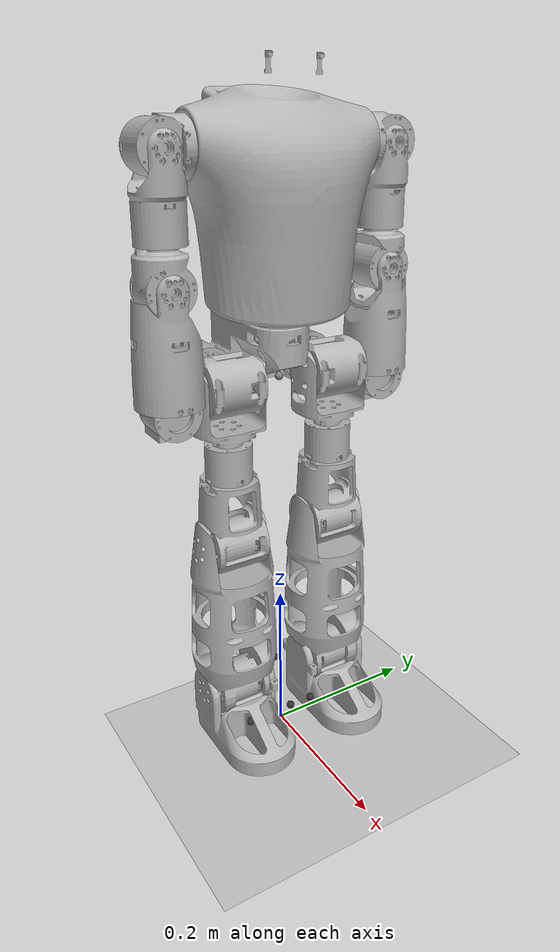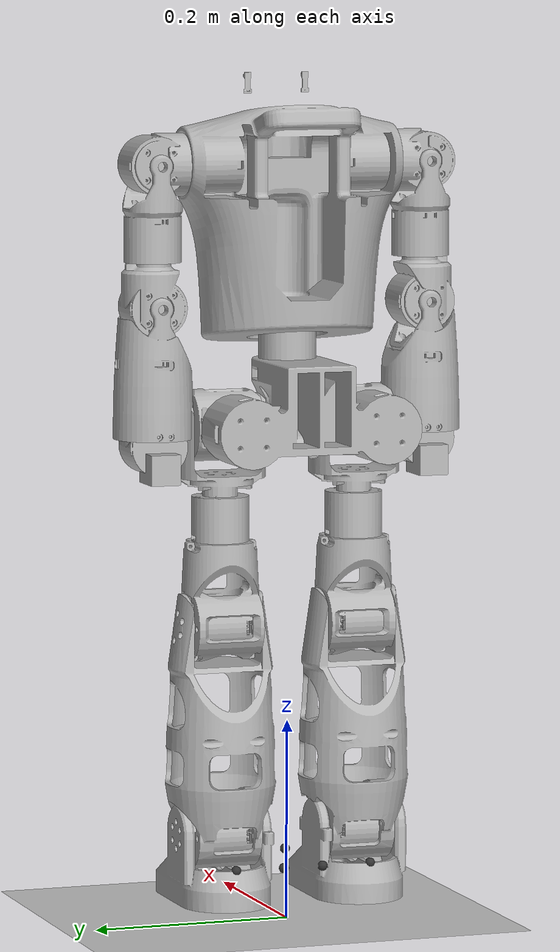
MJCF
<?xml version="1.0" ?>
<mujoco model="dm_prototype_v02_mocap">
  <compiler angle="radian" meshdir="../urdf/meshes"/>

  <default>
    <motor ctrlrange="-1 1" ctrllimited="true"/>
    <joint actuatorfrclimited="true" type="hinge"/>
  </default>

  <asset>
    <mesh name="base_link" file="base_link.STL"/>
    <mesh name="l_ankle_pitch_link" file="l_ankle_pitch_link.STL"/>
    <mesh name="l_camera_link" file="l_camera_link.STL"/>
    <mesh name="l_elbow_roll_link" file="l_elbow_roll_link.STL"/>
    <mesh name="l_hip_pitch_link" file="l_hip_pitch_link.STL"/>
    <mesh name="l_hip_roll_link" file="l_hip_roll_link.STL"/>
    <mesh name="l_hip_yaw_link" file="l_hip_yaw_link.STL"/>
    <mesh name="l_knee_pitch_link" file="l_knee_pitch_link.STL"/>
    <mesh name="l_shoulder_pitch_link" file="l_shoulder_pitch_link.STL"/>
    <mesh name="l_shoulder_roll_link" file="l_shoulder_roll_link.STL"/>
    <mesh name="l_shoulder_yaw_link" file="l_shoulder_yaw_link.STL"/>
    <mesh name="l_wrist_yaw_link" file="l_wrist_yaw_link.STL"/>
    <mesh name="r_ankle_pitch_link" file="r_ankle_pitch_link.STL"/>
    <mesh name="r_camera_link" file="r_camera_link.STL"/>
    <mesh name="r_elbow_roll_link" file="r_elbow_roll_link.STL"/>
    <mesh name="r_hip_pitch_link" file="r_hip_pitch_link.STL"/>
    <mesh name="r_hip_roll_link" file="r_hip_roll_link.STL"/>
    <mesh name="r_hip_yaw_link" file="r_hip_yaw_link.STL"/>
    <mesh name="r_knee_pitch_link" file="r_knee_pitch_link.STL"/>
    <mesh name="r_shoulder_pitch_link" file="r_shoulder_pitch_link.STL"/>
    <mesh name="r_shoulder_roll_link" file="r_shoulder_roll_link.STL"/>
    <mesh name="r_shoulder_yaw_link" file="r_shoulder_yaw_link.STL"/>
    <mesh name="r_wrist_yaw_link" file="r_wrist_yaw_link.STL"/>
    <mesh name="waist_yaw_link" file="waist_yaw_link.STL"/>
  </asset>

  <worldbody>
    <geom name="floor" size="0 0 0.01" type="plane" contype="1" conaffinity="0" priority="1" friction="0.6" condim="3" rgba="0.8 0.8 0.8 1"/>
    <light diffuse=".5 .5 .5" pos="-3 -3 5" dir="3 3 -5" castshadow="true"/>

    <body name="base_link" pos="0 0 0.5">
      <inertial pos="-0.051472 -1.1552e-05 0.020319" mass="1.4163" diaginertia="0.0021671 0.0015112 0.0025051"/>
      <freejoint name="base_link"/>
      <site name="imu" pos="0 0 0"/>
      <geom type="mesh" mesh="base_link" name="base_link_visual" pos="0.0 0.0 0.0" contype="0" conaffinity="0" group="1" density="0" rgba="0.7 0.7 0.7 1"/>
      <geom type="mesh" mesh="base_link" name="base_link_collision" pos="0.0 0.0 0.0" rgba="0.7 0.7 0.7 1"/>

      <body name="waist_yaw_link" pos="0.0 0.0 0.0437499999999999">
        <joint name="waist_yaw_joint" type="hinge" axis="0.0 0.0 -1.0" range="-3.1415 3.1415" actuatorfrcrange="-50 50"/>
        <inertial pos="0.01003 2.647e-07 0.15087" mass="4.1981" diaginertia="0.022522 0.017977 0.014275"/>
        <geom type="mesh" mesh="waist_yaw_link" name="waist_yaw_link_visual" pos="0.0 0.0 0.0" contype="0" conaffinity="0" group="1" density="0" rgba="0.7 0.7 0.7 1"/>
        <geom type="mesh" mesh="waist_yaw_link" name="waist_yaw_link_collision" pos="0.0 0.0 0.0" rgba="0.7 0.7 0.7 1"/>

        <body name="r_shoulder_pitch_link" pos="0.0 -0.0530000000000001 0.21325">
          <joint name="r_shoulder_pitch_joint" type="hinge" axis="0.0 -1.0 0.0" range="-3.4557 2.4088" actuatorfrcrange="-25 25"/>
          <inertial pos="-0.001297 -0.076747 1.2055e-06" mass="0.40323" diaginertia="0.00014803 0.00014627 0.00012736"/>
          <geom type="mesh" mesh="r_shoulder_pitch_link" name="r_shoulder_pitch_link_visual" pos="0.0 0.0 0.0" contype="0" conaffinity="0" group="1" density="0" rgba="0.7 0.7 0.7 1"/>
          <geom type="mesh" mesh="r_shoulder_pitch_link" name="r_shoulder_pitch_link_collision" pos="0.0 0.0 0.0" rgba="0.7 0.7 0.7 1"/>

          <body name="r_shoulder_roll_link" pos="-0.0227000000000002 -0.0865 0.0">
            <joint name="r_shoulder_roll_joint" type="hinge" axis="1.0 0.0 0.0" range="-2.5306 0.0" actuatorfrcrange="-25 25"/>
            <inertial pos="0.024716 -5.0805e-05 -0.05577" mass="0.41152" diaginertia="0.0001432 0.00016225 0.00016985"/>
            <geom type="mesh" mesh="r_shoulder_roll_link" name="r_shoulder_roll_link_visual" pos="0.0 0.0 0.0" contype="0" conaffinity="0" group="1" density="0" rgba="0.7 0.7 0.7 1"/>
            <geom type="mesh" mesh="r_shoulder_roll_link" name="r_shoulder_roll_link_collision" pos="0.0 0.0 0.0" rgba="0.7 0.7 0.7 1"/>

            <body name="r_shoulder_yaw_link" pos="0.0220000000000001 0.0 -0.0499999999999993">
              <joint name="r_shoulder_yaw_joint" type="hinge" axis="0.0 0.0 -1.0" range="-3.1415 2.4088" actuatorfrcrange="-25 25"/>
              <inertial pos="-0.0010518 -0.00089443 -0.079087" mass="0.40075" diaginertia="0.00014176 0.00013078 0.00013929"/>
              <geom type="mesh" mesh="r_shoulder_yaw_link" name="r_shoulder_yaw_link_visual" pos="0.0 0.0 0.0" contype="0" conaffinity="0" group="1" density="0" rgba="0.7 0.7 0.7 1"/>
              <geom type="mesh" mesh="r_shoulder_yaw_link" name="r_shoulder_yaw_link_collision" pos="0.0 0.0 0.0" rgba="0.7 0.7 0.7 1"/>

              <body name="r_elbow_roll_link" pos="-0.0222999999999987 0.0 -0.0895">
                <joint name="r_elbow_roll_joint" type="hinge" axis="1.0 0.0 0.0" range="0.0 1.3613" actuatorfrcrange="-25 25"/>
                <inertial pos="0.024328 -9.7691e-05 -0.06013" mass="0.4941" diaginertia="0.00024294 0.00026056 0.00027054"/>
                <geom type="mesh" mesh="r_elbow_roll_link" name="r_elbow_roll_link_visual" pos="0.0 0.0 0.0" contype="0" conaffinity="0" group="1" density="0" rgba="0.7 0.7 0.7 1"/>
                <geom type="mesh" mesh="r_elbow_roll_link" name="r_elbow_roll_link_collision" pos="0.0 0.0 0.0" rgba="0.7 0.7 0.7 1"/>

                <body name="r_wrist_yaw_link" pos="0.0219999999999987 0.0 -0.0500000000000001">
                  <joint name="r_wrist_yaw_joint" type="hinge" axis="0.0 0.0 -1.0" range="-5.4977 0.2617" actuatorfrcrange="-5 5"/>
                  <inertial pos="-0.0007974 6.6694e-06 -0.076537" mass="0.39976" diaginertia="0.00014722 0.0001272 0.00014561"/>
                  <geom type="mesh" mesh="r_wrist_yaw_link" name="r_wrist_yaw_link_visual" pos="0.0 0.0 0.0" contype="0" conaffinity="0" group="1" density="0" rgba="0.7 0.7 0.7 1"/>
                  <geom type="mesh" mesh="r_wrist_yaw_link" name="r_wrist_yaw_link_collision" pos="0.0 0.0 0.0" rgba="0.7 0.7 0.7 1"/>

                  <body name="r_wrist_roll_link" pos="-0.0223 0.0 -0.0864999999999999">
                    <joint name="r_wrist_roll_joint" type="hinge" axis="1.0 0.0 0.0" range="-3.1415 3.1415" actuatorfrcrange="-5 5"/>
                    <inertial pos="0.022714 0.13132 0.019433" mass="0.001" diaginertia="2.7071 2.4689 0.31284"/>
                    <geom type="box" size="0.02 0.015 0.015" pos="0.0 0.0 -0.02" rgba="0.7 0.7 0.7 1"/>
                  </body>
                </body>
              </body>
            </body>
          </body>
        </body>

        <body name="l_shoulder_pitch_link" pos="0.0 0.053 0.21325">
          <joint name="l_shoulder_pitch_joint" type="hinge" axis="0.0 1.0 0.0" range="-3.4557 2.4088" actuatorfrcrange="-25 25"/>
          <inertial pos="-0.001297 0.076747 1.1885e-06" mass="0.40323" diaginertia="0.00014803 0.00014627 0.00012736"/>
          <geom type="mesh" mesh="l_shoulder_pitch_link" name="l_shoulder_pitch_link_visual" pos="0.0 0.0 0.0" contype="0" conaffinity="0" group="1" density="0" rgba="0.7 0.7 0.7 1"/>
          <geom type="mesh" mesh="l_shoulder_pitch_link" name="l_shoulder_pitch_link_collision" pos="0.0 0.0 0.0" rgba="0.7 0.7 0.7 1"/>

          <body name="l_shoulder_roll_link" pos="-0.0226999999999999 0.0865 0.0">
            <joint name="l_shoulder_roll_joint" type="hinge" axis="1.0 0.0 0.0" range="0.0 2.5306" actuatorfrcrange="-25 25"/>
            <inertial pos="0.024716 5.0877e-05 -0.05577" mass="0.41152" diaginertia="0.0001432 0.00016225 0.00016985"/>
            <geom type="mesh" mesh="l_shoulder_roll_link" name="l_shoulder_roll_link_visual" pos="0.0 0.0 0.0" contype="0" conaffinity="0" group="1" density="0" rgba="0.7 0.7 0.7 1"/>
            <geom type="mesh" mesh="l_shoulder_roll_link" name="l_shoulder_roll_link_collision" pos="0.0 0.0 0.0" rgba="0.7 0.7 0.7 1"/>

            <body name="l_shoulder_yaw_link" pos="0.0219999999999999 0.0 -0.0499999999999998">
              <joint name="l_shoulder_yaw_joint" type="hinge" axis="0.0 0.0 -1.0" range="-2.4088 3.4557" actuatorfrcrange="-25 25"/>
              <inertial pos="-0.0010518 0.00089444 -0.079087" mass="0.40075" diaginertia="0.00014176 0.00013078 0.00013929"/>
              <geom type="mesh" mesh="l_shoulder_yaw_link" name="l_shoulder_yaw_link_visual" pos="0.0 0.0 0.0" contype="0" conaffinity="0" group="1" density="0" rgba="0.7 0.7 0.7 1"/>
              <geom type="mesh" mesh="l_shoulder_yaw_link" name="l_shoulder_yaw_link_collision" pos="0.0 0.0 0.0" rgba="0.7 0.7 0.7 1"/>

              <body name="l_elbow_roll_link" pos="-0.0223 0.0 -0.0895000000000001">
                <joint name="l_elbow_roll_joint" type="hinge" axis="1.0 0.0 0.0" range="-1.3613 0.0" actuatorfrcrange="-25 25"/>
                <inertial pos="0.024328 9.7598e-05 -0.06013" mass="0.4941" diaginertia="0.00024295 0.00026057 0.00027055"/>
                <geom type="mesh" mesh="l_elbow_roll_link" name="l_elbow_roll_link_visual" pos="0.0 0.0 0.0" contype="0" conaffinity="0" group="1" density="0" rgba="0.7 0.7 0.7 1"/>
                <geom type="mesh" mesh="l_elbow_roll_link" name="l_elbow_roll_link_collision" pos="0.0 0.0 0.0" rgba="0.7 0.7 0.7 1"/>

                <body name="l_wrist_yaw_link" pos="0.022 0.0 -0.05">
                  <joint name="l_wrist_yaw_joint" type="hinge" axis="0.0 0.0 -1.0" range="-0.2617 5.4977" actuatorfrcrange="-5 5"/>
                  <inertial pos="-0.0007974 -6.6866e-06 -0.076537" mass="0.39976" diaginertia="0.00014722 0.0001272 0.00014561"/>
                  <geom type="mesh" mesh="l_wrist_yaw_link" name="l_wrist_yaw_link_visual" pos="0.0 0.0 0.0" contype="0" conaffinity="0" group="1" density="0" rgba="0.7 0.7 0.7 1"/>
                  <geom type="mesh" mesh="l_wrist_yaw_link" name="l_wrist_yaw_link_collision" pos="0.0 0.0 0.0" rgba="0.7 0.7 0.7 1"/>

                  <body name="l_wrist_roll_link" pos="-0.0223 0.0 -0.0865">
                    <joint name="l_wrist_roll_joint" type="hinge" axis="1.0 0.0 0.0" range="-3.1415 3.1415" actuatorfrcrange="-5 5"/>
                    <inertial pos="0.022714 -0.14768 0.019433" mass="0.001" diaginertia="2.7071 2.4689 0.31284"/>
                    <geom type="box" size="0.02 0.015 0.015" pos="0.0 0.0 -0.02" rgba="0.7 0.7 0.7 1"/>
                  </body>
                </body>
              </body>
            </body>
          </body>
        </body>

        <body name="l_camera_link" pos="0.0329999999999999 0.03 0.29725">
          <inertial pos="0.0020526 3.6558e-06 -0.0023495" mass="0.0001478" diaginertia="2.6646e-09 2.2609e-09 5.6902e-10"/>
          <geom type="mesh" mesh="l_camera_link" name="l_camera_link_visual" pos="0.0 0.0 0.0" contype="0" conaffinity="0" group="1" density="0" rgba="0.7 0.7 0.7 1"/>
        </body>

        <body name="r_camera_link" pos="0.0329999999999999 -0.0300000000000001 0.29725">
          <inertial pos="0.0020526 -3.6558e-06 -0.0023495" mass="0.0001478" diaginertia="2.6646e-09 2.2609e-09 5.6902e-10"/>
          <geom type="mesh" mesh="r_camera_link" name="r_camera_link_visual" pos="0.0 0.0 0.0" contype="0" conaffinity="0" group="1" density="0" rgba="0.7 0.7 0.7 1"/>
        </body>
      </body>

      <body name="r_hip_roll_link" pos="-0.0963 -0.07 0.0">
        <joint name="r_hip_roll_joint" type="hinge" axis="-1.0 0.0 0.0" range="-0.9162 0.6544" actuatorfrcrange="-88 88"/>
        <inertial pos="0.080917 9.9433e-05 -0.00060262" mass="0.59088" diaginertia="0.0002149 0.00025167 0.00028171"/>
        <geom type="mesh" mesh="r_hip_roll_link" name="r_hip_roll_link_visual" pos="0.0 0.0 0.0" contype="0" conaffinity="0" group="1" density="0" rgba="0.7 0.7 0.7 1"/>
        <geom type="mesh" mesh="r_hip_roll_link" name="r_hip_roll_link_collision" pos="0.0 0.0 0.0" rgba="0.7 0.7 0.7 1"/>

        <body name="r_hip_pitch_link" pos="0.0963000000000001 0.0246 0.0">
          <joint name="r_hip_pitch_joint" type="hinge" axis="0.0 1.0 0.0" range="-2.0943 0.5235" actuatorfrcrange="-88 88"/>
          <inertial pos="-1.1522e-07 -0.032072 -0.024203" mass="0.36375" diaginertia="0.00028163 0.00017308 0.00020081"/>
          <geom type="mesh" mesh="r_hip_pitch_link" name="r_hip_pitch_link_visual" pos="0.0 0.0 0.0" contype="0" conaffinity="0" group="1" density="0" rgba="0.7 0.7 0.7 1"/>
          <geom type="mesh" mesh="r_hip_pitch_link" name="r_hip_pitch_link_collision" pos="0.0 0.0 0.0" rgba="0.7 0.7 0.7 1"/>

          <body name="r_hip_yaw_link" pos="0.0 -0.0245999999999999 -0.07">
            <joint name="r_hip_yaw_joint" type="hinge" axis="0.0 0.0 1.0" range="-0.7853 0.7853" actuatorfrcrange="-88 88"/>
            <inertial pos="8.556e-07 0.00032568 -0.081355" mass="0.74847" diaginertia="0.00057059 0.00049948 0.00034977"/>
            <geom type="mesh" mesh="r_hip_yaw_link" name="r_hip_yaw_link_visual" pos="0.0 0.0 0.0" contype="0" conaffinity="0" group="1" density="0" rgba="0.7 0.7 0.7 1"/>
            <geom type="mesh" mesh="r_hip_yaw_link" name="r_hip_yaw_link_collision" pos="0.0 0.0 0.0" rgba="0.7 0.7 0.7 1"/>

            <body name="r_knee_pitch_link" pos="0.0 0.0247999999999999 -0.13">
              <joint name="r_knee_pitch_joint" type="hinge" axis="0.0 1.0 0.0" range="0.0 2.0943" actuatorfrcrange="-88 88"/>
              <inertial pos="0.00013027 -0.027507 -0.12318" mass="0.95829" diaginertia="0.0031166 0.0034509 0.00057402"/>
              <geom type="mesh" mesh="r_knee_pitch_link" name="r_knee_pitch_link_visual" pos="0.0 0.0 0.0" contype="0" conaffinity="0" group="1" density="0" rgba="0.7 0.7 0.7 1"/>
              <geom type="mesh" mesh="r_knee_pitch_link" name="r_knee_pitch_link_collision" pos="0.0 0.0 0.0" rgba="0.7 0.7 0.7 1"/>

              <body name="r_ankle_pitch_link" pos="0.0 -5.00000000000222e-05 -0.20899997115746">
                <joint name="r_ankle_pitch_joint" type="hinge" axis="0.0 1.0 0.0" range="-0.7853 0.7853" actuatorfrcrange="-50 50"/>
                <inertial pos="0.0089802 -0.032096 -0.020958" mass="0.43135" diaginertia="0.00041586 0.0005858 0.00070151"/>
                <geom type="mesh" mesh="r_ankle_pitch_link" name="r_ankle_pitch_link_visual" pos="0.0 0.0 0.0" contype="0" conaffinity="0" group="1" density="0" rgba="0.7 0.7 0.7 1"/>
                <geom type="mesh" mesh="r_ankle_pitch_link" name="r_ankle_pitch_link_collision" pos="0.0 0.0 0.0" rgba="0.2 0.2 0.2 1"/>
                <geom size="0.005" pos="-0.05 0.025 -0.03" rgba="0.2 0.2 0.2 1"/>
                <geom size="0.005" pos="-0.05 -0.025 -0.03" rgba="0.2 0.2 0.2 1"/>
                <geom size="0.005" pos="0.05 0.03 -0.03" rgba="0.2 0.2 0.2 1"/>
                <geom size="0.005" pos="0.05 -0.03 -0.03" rgba="0.2 0.2 0.2 1"/>

                <!-- Mocap body for foot tracking -->
                <body name="r_foot_mocap" pos="0.03 0.0 -0.03"/>
              </body>
            </body>
          </body>
        </body>
      </body>

      <body name="l_hip_roll_link" pos="-0.0963 0.07 0.0">
        <joint name="l_hip_roll_joint" type="hinge" axis="-1.0 0.0 0.0" range="-0.6544 0.9162" actuatorfrcrange="-88 88"/>
        <inertial pos="0.080917 -9.9516e-05 -0.00060325" mass="0.59088" diaginertia="0.0002149 0.00025167 0.00028171"/>
        <geom type="mesh" mesh="l_hip_roll_link" name="l_hip_roll_link_visual" pos="0.0 0.0 0.0" contype="0" conaffinity="0" group="1" density="0" rgba="0.7 0.7 0.7 1"/>
        <geom type="mesh" mesh="l_hip_roll_link" name="l_hip_roll_link_collision" pos="0.0 0.0 0.0" rgba="0.7 0.7 0.7 1"/>

        <body name="l_hip_pitch_link" pos="0.0963 -0.0246 0.0">
          <joint name="l_hip_pitch_joint" type="hinge" axis="0.0 -1.0 0.0" range="-2.0944 0.5235" actuatorfrcrange="-88 88"/>
          <inertial pos="-3.5545e-07 0.032072 -0.024203" mass="0.36375" diaginertia="0.00028163 0.00017308 0.00020081"/>
          <geom type="mesh" mesh="l_hip_pitch_link" name="l_hip_pitch_link_visual" pos="0.0 0.0 0.0" contype="0" conaffinity="0" group="1" density="0" rgba="0.7 0.7 0.7 1"/>
          <geom type="mesh" mesh="l_hip_pitch_link" name="l_hip_pitch_link_collision" pos="0.0 0.0 0.0" rgba="0.7 0.7 0.7 1"/>

          <body name="l_hip_yaw_link" pos="0.0 0.0245999999999999 -0.07">
            <joint name="l_hip_yaw_joint" type="hinge" axis="0.0 0.0 1.0" range="-0.7853 0.7853" actuatorfrcrange="-88 88"/>
            <inertial pos="3.0998e-07 -0.00032568 -0.081355" mass="0.74848" diaginertia="0.0005706 0.00049948 0.00034977"/>
            <geom type="mesh" mesh="l_hip_yaw_link" name="l_hip_yaw_link_visual" pos="0.0 0.0 0.0" contype="0" conaffinity="0" group="1" density="0" rgba="0.7 0.7 0.7 1"/>
            <geom type="mesh" mesh="l_hip_yaw_link" name="l_hip_yaw_link_collision" pos="0.0 0.0 0.0" rgba="0.7 0.7 0.7 1"/>

            <body name="l_knee_pitch_link" pos="0.0 -0.0248 -0.13">
              <joint name="l_knee_pitch_joint" type="hinge" axis="0.0 -1.0 0.0" range="0.0 2.0944" actuatorfrcrange="-88 88"/>
              <inertial pos="0.00013014 0.027506 -0.12318" mass="0.95832" diaginertia="0.0031167 0.003451 0.000574"/>
              <geom type="mesh" mesh="l_knee_pitch_link" name="l_knee_pitch_link_visual" pos="0.0 0.0 0.0" contype="0" conaffinity="0" group="1" density="0" rgba="0.7 0.7 0.7 1"/>
              <geom type="mesh" mesh="l_knee_pitch_link" name="l_knee_pitch_link_collision" pos="0.0 0.0 0.0" rgba="0.7 0.7 0.7 1"/>

              <body name="l_ankle_pitch_link" pos="0.0 5.00000000001194e-05 -0.20899997115746">
                <joint name="l_ankle_pitch_joint" type="hinge" axis="0.0 -1.0 0.0" range="-0.7853 0.7853" actuatorfrcrange="-50 50"/>
                <inertial pos="0.008987 0.032086 -0.020963" mass="0.43146" diaginertia="0.00041599 0.00058581 0.00070164"/>
                <geom type="mesh" mesh="l_ankle_pitch_link" name="l_ankle_pitch_link_visual" pos="0.0 0.0 0.0" contype="0" conaffinity="0" group="1" density="0" rgba="0.7 0.7 0.7 1"/>
                <geom type="mesh" mesh="l_ankle_pitch_link" name="l_ankle_pitch_link_collision" pos="0.0 0.0 0.0" rgba="0.2 0.2 0.2 1"/>
                <geom size="0.005" pos="-0.05 0.025 -0.03" rgba="0.2 0.2 0.2 1"/>
                <geom size="0.005" pos="-0.05 -0.025 -0.03" rgba="0.2 0.2 0.2 1"/>
                <geom size="0.005" pos="0.05 0.03 -0.03" rgba="0.2 0.2 0.2 1"/>
                <geom size="0.005" pos="0.05 -0.03 -0.03" rgba="0.2 0.2 0.2 1"/>

                <!-- Mocap body for foot tracking -->
                <body name="l_foot_mocap" pos="0.03 0.0 -0.03"/>
              </body>
            </body>
          </body>
        </body>
      </body>
    </body>
  </worldbody>

  <actuator>
    <motor name="waist_yaw_joint" joint="waist_yaw_joint"/>
    <motor name="l_hip_roll_joint" joint="l_hip_roll_joint"/>
    <motor name="l_hip_pitch_joint" joint="l_hip_pitch_joint"/>
    <motor name="l_hip_yaw_joint" joint="l_hip_yaw_joint"/>
    <motor name="l_knee_pitch_joint" joint="l_knee_pitch_joint"/>
    <motor name="l_ankle_pitch_joint" joint="l_ankle_pitch_joint"/>
    <motor name="r_hip_roll_joint" joint="r_hip_roll_joint"/>
    <motor name="r_hip_pitch_joint" joint="r_hip_pitch_joint"/>
    <motor name="r_hip_yaw_joint" joint="r_hip_yaw_joint"/>
    <motor name="r_knee_pitch_joint" joint="r_knee_pitch_joint"/>
    <motor name="r_ankle_pitch_joint" joint="r_ankle_pitch_joint"/>
    <motor name="l_shoulder_pitch_joint" joint="l_shoulder_pitch_joint"/>
    <motor name="l_shoulder_roll_joint" joint="l_shoulder_roll_joint"/>
    <motor name="l_shoulder_yaw_joint" joint="l_shoulder_yaw_joint"/>
    <motor name="l_elbow_roll_joint" joint="l_elbow_roll_joint"/>
    <motor name="l_wrist_yaw_joint" joint="l_wrist_yaw_joint"/>
    <motor name="l_wrist_roll_joint" joint="l_wrist_roll_joint"/>
    <motor name="r_shoulder_pitch_joint" joint="r_shoulder_pitch_joint"/>
    <motor name="r_shoulder_roll_joint" joint="r_shoulder_roll_joint"/>
    <motor name="r_shoulder_yaw_joint" joint="r_shoulder_yaw_joint"/>
    <motor name="r_elbow_roll_joint" joint="r_elbow_roll_joint"/>
    <motor name="r_wrist_yaw_joint" joint="r_wrist_yaw_joint"/>
    <motor name="r_wrist_roll_joint" joint="r_wrist_roll_joint"/>
  </actuator>

  <sensor>
    <framequat name='orientation' objtype='body' noise='0.001' objname='base_link'/>
    <framepos name='position' objtype='body' noise='0.001' objname='base_link'/>
    <gyro name='angular-velocity' cutoff='34.9' noise='0.005' site='imu'/>
  </sensor>

  <!-- setup scene -->
  <statistic center="0.0 0.0 0.5" extent="1.5"/>
  <visual>
    <headlight diffuse="0.6 0.6 0.6" ambient="0.1 0.1 0.1" specular="0.9 0.9 0.9"/>
    <rgba haze="0.15 0.25 0.35 1"/>
    <global azimuth="-140" elevation="-20" offwidth="2080" offheight="1170"/>
  </visual>
</mujoco>
